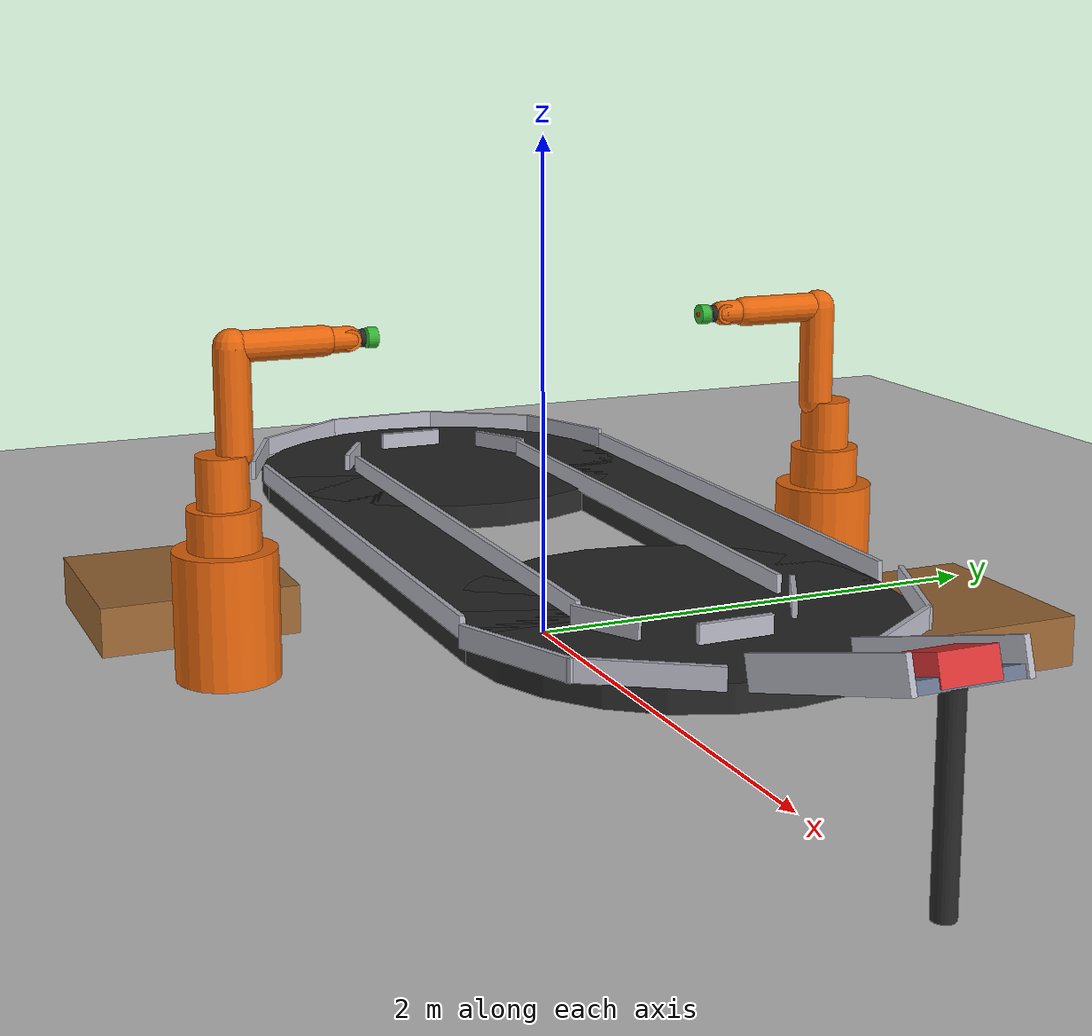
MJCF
<mujoco model="dual_kuka_cell">
  <compiler angle="radian" coordinate="local" inertiafromgeom="true"/>
  <option timestep="0.002" gravity="0 0 -9.81" integrator="RK4"/>

  <asset>
    <texture type="skybox" builtin="gradient" rgb1="0.3 0.5 0.7" rgb2="0.1 0.1 0.2" width="512" height="512"/>
    <texture name="grid_floor" type="2d" builtin="checker" rgb1="0.8 0.8 0.8" rgb2="0.7 0.7 0.7" width="512" height="512"/>
    <material name="mat_floor" texture="grid_floor" texrepeat="20 20" reflectance="0.1"/>

    <material name="mat_conveyor" rgba="0.15 0.15 0.15 1" specular="0.4" shininess="0.3"/>
    <material name="mat_chute" rgba="0.4 0.45 0.55 1" specular="0.9" shininess="0.8"/>
    <material name="mat_rail" rgba="0.7 0.7 0.75 1" specular="0.8" shininess="0.6"/>
    <material name="mat_pallet" rgba="0.6 0.4 0.2 1" specular="0.1"/>
    <material name="mat_robot_base" rgba="0.9 0.4 0.05 1" specular="0.7" shininess="0.5"/>
    <material name="mat_package" rgba="0.85 0.2 0.2 1" specular="0.2"/>
  </asset>

  <!-- CLASSIFICATORE DEI DEFAULT: Isola i robot dal corpo libero del pacco -->
  <default>
    <geom contype="1" conaffinity="1"/>
    <default class="robot">
      <joint damping="1.5" frictionloss="0.5" armature="0.1"/>
      <position kp="250" kv="25"/>
    </default>
  </default>

  <worldbody>
    <light directional="true" pos="0 0 4" dir="0 0 -1" castshadow="true" diffuse="0.8 0.8 0.8"/>
    <light directional="false" pos="2 2 3" diffuse="0.4 0.4 0.4"/>
    <light directional="false" pos="-2 -2 3" diffuse="0.4 0.4 0.4"/>

    <geom name="floor" type="plane" size="5 5 0.1" material="mat_floor"/>

    <!-- NASTRO OVALE PIANO -->
    <geom name="conveyor_straight_1" type="box" pos="0 0.6 0.4" size="1.2 0.2 0.05" material="mat_conveyor"/>
    <geom name="conveyor_straight_2" type="box" pos="0 -0.6 0.4" size="1.2 0.2 0.05" material="mat_conveyor"/>
    <geom name="conveyor_curve_east" type="cylinder" pos="1.2 0 0.4" size="0.8 0.05" material="mat_conveyor"/>
    <geom name="conveyor_curve_west" type="cylinder" pos="-1.2 0 0.4" size="0.8 0.05" material="mat_conveyor"/>

    <!-- SPONDE TRATTI RETTILINEI -->
    <geom name="rail_north_outer" type="box" pos="0 0.81 0.48" size="1.2 0.01 0.04" material="mat_rail"/>
    <geom name="rail_north_inner" type="box" pos="0 0.39 0.48" size="1.2 0.01 0.04" material="mat_rail"/>
    <geom name="rail_south_outer" type="box" pos="0 -0.81 0.48" size="1.2 0.01 0.04" material="mat_rail"/>
    <geom name="rail_south_inner" type="box" pos="0 -0.39 0.48" size="1.2 0.01 0.04" material="mat_rail"/>

    <!-- SPONDE CURVA OVEST -->
    <geom name="rail_w_out_1" type="box" pos="-1.51 0.75 0.48" size="0.25 0.01 0.04" euler="0 0 0.39" material="mat_rail"/>
    <geom name="rail_w_out_2" type="box" pos="-1.86 0.46 0.48" size="0.25 0.01 0.04" euler="0 0 0.98" material="mat_rail"/>
    <geom name="rail_w_out_3" type="box" pos="-2.01 0.0 0.48" size="0.25 0.01 0.04" euler="0 0 1.5708" material="mat_rail"/>
    <geom name="rail_w_out_4" type="box" pos="-1.86 -0.46 0.48" size="0.25 0.01 0.04" euler="0 0 -0.98" material="mat_rail"/>
    <geom name="rail_w_out_5" type="box" pos="-1.51 -0.75 0.48" size="0.25 0.01 0.04" euler="0 0 -0.39" material="mat_rail"/>

    <geom name="rail_w_in_1" type="box" pos="-1.35 0.36 0.48" size="0.14 0.01 0.04" euler="0 0 0.5" material="mat_rail"/>
    <geom name="rail_w_in_2" type="box" pos="-1.59 0.0 0.48" size="0.14 0.01 0.04" euler="0 0 1.5708" material="mat_rail"/>
    <geom name="rail_w_in_3" type="box" pos="-1.35 -0.36 0.48" size="0.14 0.01 0.04" euler="0 0 -0.5" material="mat_rail"/>

    <!-- SPONDE CURVA EST -->
    <geom name="rail_e_out_1" type="box" pos="1.51 0.75 0.48" size="0.25 0.01 0.04" euler="0 0 -0.39" material="mat_rail"/>
    <geom name="rail_e_out_2" type="box" pos="1.86 0.46 0.48" size="0.25 0.01 0.04" euler="0 0 -0.98" material="mat_rail"/>
    <geom name="rail_e_out_3" type="box" pos="1.86 -0.46 0.48" size="0.25 0.01 0.04" euler="0 0 0.98" material="mat_rail"/>
    <geom name="rail_e_out_4" type="box" pos="1.51 -0.75 0.48" size="0.25 0.01 0.04" euler="0 0 0.39" material="mat_rail"/>

    <geom name="rail_e_in_1" type="box" pos="1.35 0.36 0.48" size="0.14 0.01 0.04" euler="0 0 -0.5" material="mat_rail"/>
    <geom name="rail_e_in_2" type="box" pos="1.59 0.0 0.48" size="0.14 0.01 0.04" euler="0 0 1.5708" material="mat_rail"/>
    <geom name="rail_e_in_3" type="box" pos="1.35 -0.36 0.48" size="0.14 0.01 0.04" euler="0 0 0.5" material="mat_rail"/>

    <!-- SCIVOLO A PENDENZA DOLCE E ARRETRATO (17 deg / -0.30 rad) -->
    <geom name="chute_ramp" type="box" pos="2.45 0 0.59" size="0.45 0.18 0.02" euler="0 -0.30 0" material="mat_chute" friction="0.02 0.005 0.0001"/>
    <geom name="chute_rail_left" type="box" pos="2.45 0.19 0.63" size="0.45 0.01 0.06" euler="0 -0.30 0" material="mat_rail" friction="0.02 0.005 0.0001"/>
    <geom name="chute_rail_right" type="box" pos="2.45 -0.19 0.63" size="0.45 0.01 0.06" euler="0 -0.30 0" material="mat_rail" friction="0.02 0.005 0.0001"/>
    <geom name="chute_leg" type="cylinder" pos="2.80 0 0.35" size="0.04 0.35" material="mat_conveyor" contype="0" conaffinity="0"/>

    <!-- PALLET STATIONS -->
    <geom name="pallet_1" type="box" pos="0.8 1.3 0.1" size="0.4 0.4 0.1" material="mat_pallet"/>
    <geom name="pallet_2" type="box" pos="-0.8 -1.3 0.1" size="0.4 0.4 0.1" material="mat_pallet"/>

    <!-- ROBOT 1 (Nord) -->
    <body name="r1_pedestal" pos="0 1.3 0" childclass="robot">
      <geom name="r1_ped_geom" type="cylinder" pos="0 0 0.25" size="0.2 0.25" material="mat_robot_base"/>
      <body name="r1_base" pos="0 0 0.5" euler="0 0 -1.5708">
        <geom name="r1_base_g" type="cylinder" size="0.14 0.08" pos="0 0 0.08" material="mat_robot_base"/>
        <body name="r1_link1" pos="0 0 0.16">
          <joint name="r1_j1" type="hinge" axis="0 0 1" range="-2.96 2.96"/>
          <geom name="r1_l1_g" type="cylinder" size="0.1 0.1" pos="0 0 0.1" material="mat_robot_base"/>
          <body name="r1_link2" pos="0.05 0 0.2">
            <joint name="r1_j2" type="hinge" axis="0 1 0" range="-3.31 0.78"/>
            <geom name="r1_l2_g" type="capsule" fromto="0 0 0 0 0 0.4" size="0.07" material="mat_robot_base"/>
            <body name="r1_link3" pos="0 0 0.4">
              <joint name="r1_j3" type="hinge" axis="0 1 0" range="-2.09 2.72"/>
              <geom name="r1_l3_g" type="capsule" fromto="0 0 0 0.35 0 0" size="0.06" material="mat_robot_base"/>
              <body name="r1_link4" pos="0.35 0 0">
                <joint name="r1_j4" type="hinge" axis="1 0 0" range="-3.22 3.22"/>
                <geom name="r1_l4_g" type="capsule" fromto="0 0 0 0.1 0 0" size="0.05" material="mat_robot_base"/>
                <body name="r1_link5" pos="0.1 0 0">
                  <joint name="r1_j5" type="hinge" axis="0 1 0" range="-2.09 2.09"/>
                  <geom name="r1_l5_g" type="cylinder" size="0.04 0.04" zaxis="0 1 0" material="mat_robot_base"/>
                  <body name="r1_link6" pos="0.05 0 0">
                    <joint name="r1_j6" type="hinge" axis="1 0 0" range="-6.1 6.1"/>
                    <geom name="r1_flange_g" type="cylinder" size="0.035 0.01" zaxis="1 0 0" material="mat_conveyor"/>
                    <body name="r1_gripper" pos="0.04 0 0">
                      <geom name="r1_vac_g" type="cylinder" size="0.04 0.02" zaxis="1 0 0" rgba="0.2 0.7 0.2 1"/>
                      <site name="r1_suction_site" pos="0.02 0 0" size="0.01" rgba="1 0 0 1"/>
                    </body>
                  </body>
                </body>
              </body>
            </body>
          </body>
        </body>
      </body>
    </body>

    <!-- ROBOT 2 (Sud) -->
    <body name="r2_pedestal" pos="0 -1.3 0" childclass="robot">
      <geom name="r2_ped_geom" type="cylinder" pos="0 0 0.25" size="0.2 0.25" material="mat_robot_base"/>
      <body name="r2_base" pos="0 0 0.5" euler="0 0 1.5708">
        <geom name="r2_base_g" type="cylinder" size="0.14 0.08" pos="0 0 0.08" material="mat_robot_base"/>
        <body name="r2_link1" pos="0 0 0.16">
          <joint name="r2_j1" type="hinge" axis="0 0 1" range="-2.96 2.96"/>
          <geom name="r2_l1_g" type="cylinder" size="0.1 0.1" pos="0 0 0.1" material="mat_robot_base"/>
          <body name="r2_link2" pos="0.05 0 0.2">
            <joint name="r2_j2" type="hinge" axis="0 1 0" range="-3.31 0.78"/>
            <geom name="r2_l2_g" type="capsule" fromto="0 0 0 0 0 0.4" size="0.07" material="mat_robot_base"/>
            <body name="r2_link3" pos="0 0 0.4">
              <joint name="r2_j3" type="hinge" axis="0 1 0" range="-2.09 2.72"/>
              <geom name="r2_l3_g" type="capsule" fromto="0 0 0 0.35 0 0" size="0.06" material="mat_robot_base"/>
              <body name="r2_link4" pos="0.35 0 0">
                <joint name="r2_j4" type="hinge" axis="1 0 0" range="-3.22 3.22"/>
                <geom name="r2_l4_g" type="capsule" fromto="0 0 0 0.1 0 0" size="0.05" material="mat_robot_base"/>
                <body name="r2_link5" pos="0.1 0 0">
                  <joint name="r2_j5" type="hinge" axis="0 1 0" range="-2.09 2.09"/>
                  <geom name="r2_l5_g" type="cylinder" size="0.04 0.04" zaxis="0 1 0" material="mat_robot_base"/>
                  <body name="r2_link6" pos="0.05 0 0">
                    <joint name="r2_j6" type="hinge" axis="1 0 0" range="-6.1 6.1"/>
                    <geom name="r2_flange_g" type="cylinder" size="0.035 0.01" zaxis="1 0 0" material="mat_conveyor"/>
                    <body name="r2_gripper" pos="0.04 0 0">
                      <geom name="r2_vac_g" type="cylinder" size="0.04 0.02" zaxis="1 0 0" rgba="0.2 0.7 0.2 1"/>
                      <site name="r2_suction_site" pos="0.02 0 0" size="0.01" rgba="1 0 0 1"/>
                    </body>
                  </body>
                </body>
              </body>
            </body>
          </body>
        </body>
      </body>
    </body>

    <!-- PACCO TEST: Posizionato in cima alla nuova rampa a 17 gradi -->
    <body name="box_0" pos="2.78 0 0.73" euler="0 -0.30 0">
      <freejoint name="box_0_joint"/>
      <geom name="box_0_geom" type="box" size="0.1 0.1 0.05" mass="1.0" material="mat_package" friction="0.02 0.005 0.0001"/>
      <site name="box_0_site" pos="0 0 0" size="0.01"/>
    </body>
  </worldbody>

  <equality>
    <weld name="r1_weld" site1="r1_suction_site" site2="box_0_site" active="false"/>
    <weld name="r2_weld" site1="r2_suction_site" site2="box_0_site" active="false"/>
  </equality>

  <actuator>
    <position name="act_r1_j1" joint="r1_j1" ctrlrange="-2.96 2.96" class="robot"/>
    <position name="act_r1_j2" joint="r1_j2" ctrlrange="-3.31 0.78" class="robot"/>
    <position name="act_r1_j3" joint="r1_j3" ctrlrange="-2.09 2.72" class="robot"/>
    <position name="act_r1_j4" joint="r1_j4" ctrlrange="-3.22 3.22" class="robot"/>
    <position name="act_r1_j5" joint="r1_j5" ctrlrange="-2.09 2.09" class="robot"/>
    <position name="act_r1_j6" joint="r1_j6" ctrlrange="-6.1 6.1" class="robot"/>

    <position name="act_r2_j1" joint="r2_j1" ctrlrange="-2.96 2.96" class="robot"/>
    <position name="act_r2_j2" joint="r2_j2" ctrlrange="-3.31 0.78" class="robot"/>
    <position name="act_r2_j3" joint="r2_j3" ctrlrange="-2.09 2.72" class="robot"/>
    <position name="act_r2_j4" joint="r2_j4" ctrlrange="-3.22 3.22" class="robot"/>
    <position name="act_r2_j5" joint="r2_j5" ctrlrange="-2.09 2.09" class="robot"/>
    <position name="act_r2_j6" joint="r2_j6" ctrlrange="-6.1 6.1" class="robot"/>
  </actuator>
</mujoco>
